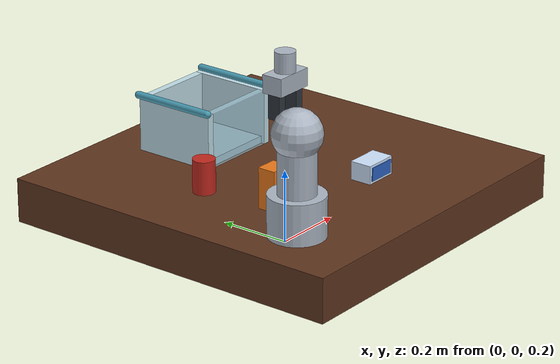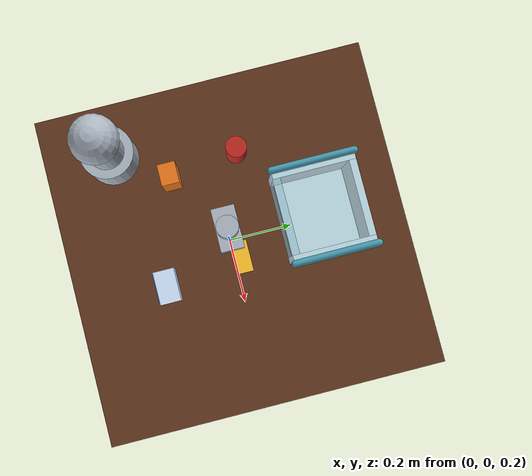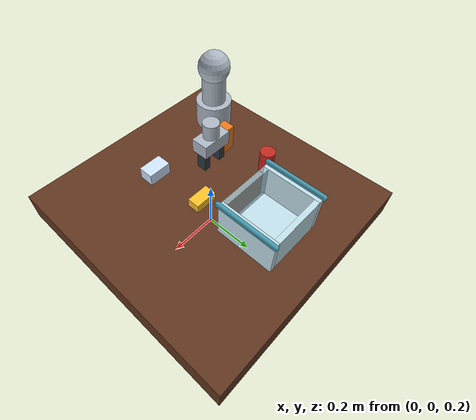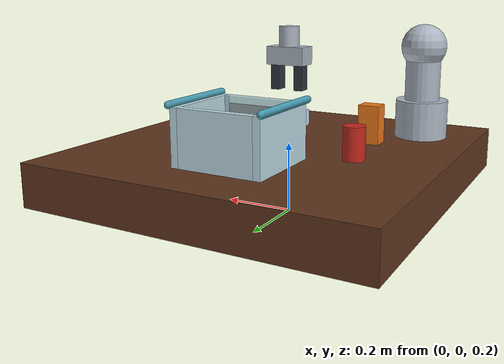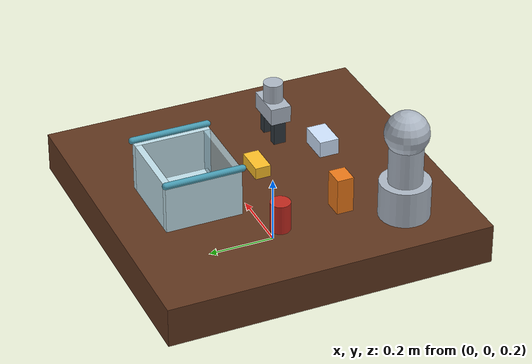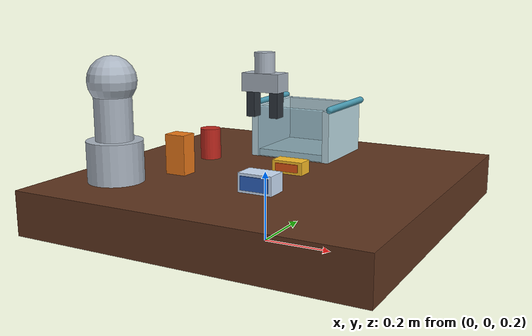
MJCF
<mujoco model="illustrative packing prompt comparison">
  <compiler angle="radian"/>
  <option timestep="0.002" gravity="0 0 -9.81"/>

  <visual>
    <global offwidth="640" offheight="360"/>
    <headlight ambient="0.30 0.30 0.30" diffuse="0.72 0.72 0.72"/>
    <quality shadowsize="2048" offsamples="4"/>
    <map znear="0.01" zfar="8"/>
  </visual>

  <asset>
    <texture name="sky" type="skybox" builtin="gradient"
             rgb1="0.72 0.82 0.91" rgb2="0.97 0.98 1.0"
             width="256" height="1024"/>
    <texture name="wood" type="2d" builtin="checker"
             rgb1="0.33 0.18 0.10" rgb2="0.42 0.24 0.14"
             width="512" height="512"/>
    <material name="table_wood" texture="wood" texrepeat="5 5"
              texuniform="true" reflectance="0.08"/>
    <material name="robot_silver" rgba="0.68 0.72 0.77 1"
              specular="0.65" shininess="0.45"/>
    <material name="basket" rgba="0.76 0.88 0.92 1"
              specular="0.15" shininess="0.15"/>
  </asset>

  <default>
    <geom contype="0" conaffinity="0"/>
  </default>

  <worldbody>
    <light name="key" pos="-0.65 -0.70 1.65" dir="0.35 0.35 -1"
           diffuse="0.92 0.90 0.86" specular="0.25 0.25 0.25"/>
    <light name="fill" pos="0.70 -0.25 1.10" dir="-0.4 0.15 -1"
           diffuse="0.45 0.50 0.58" specular="0.10 0.10 0.12"/>
    <camera name="presentation" pos="0 -1.10 1.22"
            xyaxes="1 0 0 0 0.75 1" fovy="45"/>

    <!-- Tabletop: top surface is z=0.40, matching the stored pose range. -->
    <geom name="table" type="box" pos="0.02 0.02 0.34"
          size="0.48 0.49 0.06" material="table_wood"/>

    <!-- Basket centered near the two visually reviewed episode-0 openings. -->
    <body name="basket" pos="-0.002 0.265 0.405">
      <geom name="basket_floor" type="box" pos="0 0 0.010"
            size="0.115 0.105 0.010" material="basket"/>
      <geom name="basket_left" type="box" pos="-0.115 0 0.075"
            size="0.010 0.115 0.075" material="basket"/>
      <geom name="basket_right" type="box" pos="0.115 0 0.075"
            size="0.010 0.115 0.075" material="basket"/>
      <geom name="basket_front" type="box" pos="0 -0.105 0.075"
            size="0.105 0.010 0.075" material="basket" rgba="0.68 0.84 0.90 0.72"/>
      <geom name="basket_back" type="box" pos="0 0.105 0.075"
            size="0.105 0.010 0.075" material="basket"/>
      <geom name="basket_rim_left" type="capsule" fromto="-0.128 -0.115 0.155 -0.128 0.115 0.155"
            size="0.010" rgba="0.28 0.61 0.70 1"/>
      <geom name="basket_rim_right" type="capsule" fromto="0.128 -0.115 0.155 0.128 0.115 0.155"
            size="0.010" rgba="0.28 0.61 0.70 1"/>
    </body>

    <!-- Static robot base; moving links are visual capsules added at render time. -->
    <body name="robot_base" pos="-0.30 -0.27 0.40">
      <geom type="cylinder" pos="0 0 0.055" size="0.075 0.055"
            material="robot_silver"/>
      <geom type="cylinder" pos="0 0 0.165" size="0.050 0.080"
            material="robot_silver"/>
      <geom type="sphere" pos="0 0 0.265" size="0.065"
            material="robot_silver"/>
    </body>

    <!-- A few scene-context proxies; only the two named task objects move. -->
    <geom name="tomato_can" type="cylinder" pos="-0.23 0.08 0.445"
          size="0.030 0.045" rgba="0.76 0.16 0.12 1"/>
    <geom name="juice_box" type="box" pos="-0.20 -0.12 0.455"
          size="0.030 0.025 0.055" rgba="0.93 0.48 0.10 1"/>

    <body name="cream_cheese" mocap="true" pos="0.098 -0.203 0.430">
      <geom name="cream_cheese_geom" type="box" size="0.047 0.030 0.025"
            rgba="0.82 0.90 1.0 1"/>
      <geom type="box" pos="0 -0.031 0" size="0.039 0.002 0.018"
            rgba="0.18 0.40 0.78 1"/>
    </body>
    <body name="butter" mocap="true" pos="0.069 0.020 0.420">
      <geom name="butter_geom" type="box" size="0.045 0.024 0.018"
            rgba="1.0 0.76 0.16 1"/>
      <geom type="box" pos="0 -0.025 0" size="0.034 0.002 0.011"
            rgba="0.90 0.34 0.08 1"/>
    </body>

    <!-- Moving end-effector proxy and independently positioned jaws. -->
    <body name="eef" mocap="true" pos="0 0 0.65">
      <geom name="eef_palm" type="box" size="0.055 0.030 0.025"
            material="robot_silver"/>
      <geom type="cylinder" pos="0 0 0.045" size="0.028 0.035"
            material="robot_silver"/>
    </body>
    <body name="left_jaw" mocap="true" pos="-0.035 0 0.60">
      <geom type="box" size="0.012 0.018 0.045" rgba="0.18 0.21 0.24 1"/>
    </body>
    <body name="right_jaw" mocap="true" pos="0.035 0 0.60">
      <geom type="box" size="0.012 0.018 0.045" rgba="0.18 0.21 0.24 1"/>
    </body>
  </worldbody>
</mujoco>
